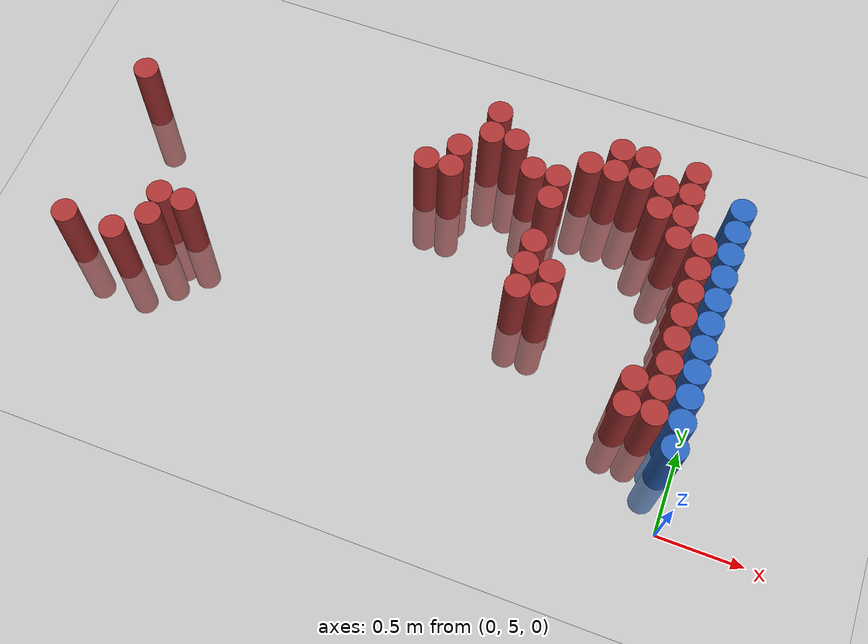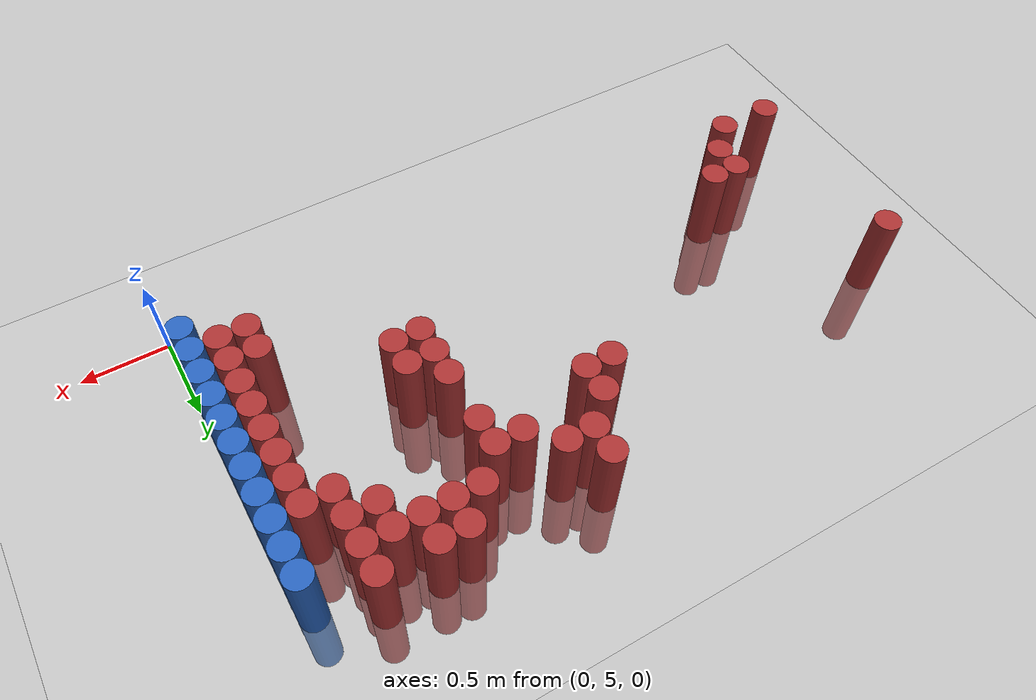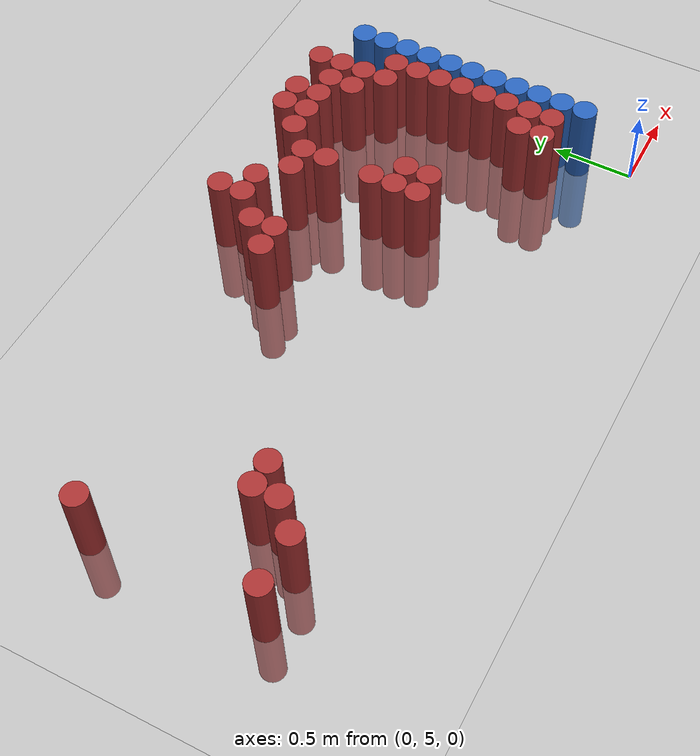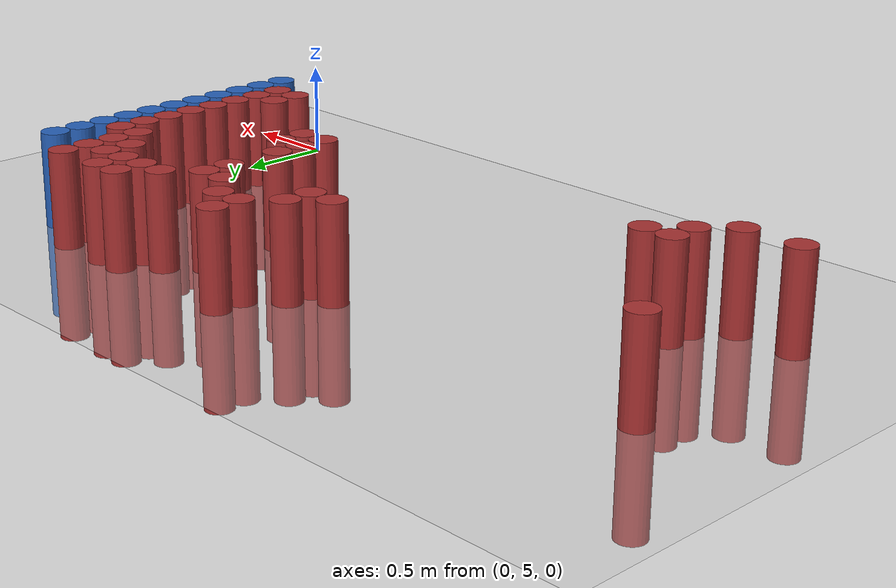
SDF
<sdf version="1.6">
 <world name="default">
  <model name="ground_plane">
   <static>1</static>
   <link name="link">
    <collision name="collision">
     <geometry><plane><normal>0 0 1</normal><size>100 100</size></plane></geometry>
     <surface><friction><ode><mu>100</mu><mu2>50</mu2></ode></friction></surface>
    </collision>
    <visual name="visual">
     <cast_shadows>0</cast_shadows>
     <geometry><plane><normal>0 0 1</normal><size>100 100</size></plane></geometry>
     <material>
      <script><uri>file://media/materials/scripts/gazebo.material</uri><name>Gazebo/Grey</name></script>
     </material>
    </visual>
   </link>
  </model>
  <model name="unit_cylinder_155">
   <static>1</static>
   <pose>-3.675000 5.475000 0.000000 0.000000 0.000000 0.000000</pose>
   <link name="link">
    <inertial>
     <mass>1</mass>
     <inertia><ixx>0.145833</ixx><ixy>0</ixy><ixz>0</ixz><iyy>0.145833</iyy><iyz>0</iyz><izz>0.125</izz></inertia>
    </inertial>
    <collision name="collision">
     <geometry><cylinder><radius>0.075000</radius><length>1</length></cylinder></geometry>
    </collision>
    <visual name="visual">
     <geometry><cylinder><radius>0.075000</radius><length>1</length></cylinder></geometry>
     <material>
      <ambient>0.648000 0.192000 0.192000 1</ambient>
      <diffuse>0.648000 0.192000 0.192000 1</diffuse>
     </material>
     <material>
      <script><name>Gazebo/Grey</name><uri>file://media/materials/scripts/gazebo.material</uri></script>
     </material>
    </visual>
   </link>
  </model>
  <model name="unit_cylinder_156">
   <static>1</static>
   <pose>-3.675000 6.525000 0.000000 0.000000 0.000000 0.000000</pose>
   <link name="link">
    <inertial>
     <mass>1</mass>
     <inertia><ixx>0.145833</ixx><ixy>0</ixy><ixz>0</ixz><iyy>0.145833</iyy><iyz>0</iyz><izz>0.125</izz></inertia>
    </inertial>
    <collision name="collision">
     <geometry><cylinder><radius>0.075000</radius><length>1</length></cylinder></geometry>
    </collision>
    <visual name="visual">
     <geometry><cylinder><radius>0.075000</radius><length>1</length></cylinder></geometry>
     <material>
      <ambient>0.648000 0.192000 0.192000 1</ambient>
      <diffuse>0.648000 0.192000 0.192000 1</diffuse>
     </material>
     <material>
      <script><name>Gazebo/Grey</name><uri>file://media/materials/scripts/gazebo.material</uri></script>
     </material>
    </visual>
   </link>
  </model>
  <model name="unit_cylinder_164">
   <static>1</static>
   <pose>-3.375000 5.475000 0.000000 0.000000 0.000000 0.000000</pose>
   <link name="link">
    <inertial>
     <mass>1</mass>
     <inertia><ixx>0.145833</ixx><ixy>0</ixy><ixz>0</ixz><iyy>0.145833</iyy><iyz>0</iyz><izz>0.125</izz></inertia>
    </inertial>
    <collision name="collision">
     <geometry><cylinder><radius>0.075000</radius><length>1</length></cylinder></geometry>
    </collision>
    <visual name="visual">
     <geometry><cylinder><radius>0.075000</radius><length>1</length></cylinder></geometry>
     <material>
      <ambient>0.648000 0.192000 0.192000 1</ambient>
      <diffuse>0.648000 0.192000 0.192000 1</diffuse>
     </material>
     <material>
      <script><name>Gazebo/Grey</name><uri>file://media/materials/scripts/gazebo.material</uri></script>
     </material>
    </visual>
   </link>
  </model>
  <model name="unit_cylinder_167">
   <static>1</static>
   <pose>-3.225000 5.625000 0.000000 0.000000 0.000000 0.000000</pose>
   <link name="link">
    <inertial>
     <mass>1</mass>
     <inertia><ixx>0.145833</ixx><ixy>0</ixy><ixz>0</ixz><iyy>0.145833</iyy><iyz>0</iyz><izz>0.125</izz></inertia>
    </inertial>
    <collision name="collision">
     <geometry><cylinder><radius>0.075000</radius><length>1</length></cylinder></geometry>
    </collision>
    <visual name="visual">
     <geometry><cylinder><radius>0.075000</radius><length>1</length></cylinder></geometry>
     <material>
      <ambient>0.648000 0.192000 0.192000 1</ambient>
      <diffuse>0.648000 0.192000 0.192000 1</diffuse>
     </material>
     <material>
      <script><name>Gazebo/Grey</name><uri>file://media/materials/scripts/gazebo.material</uri></script>
     </material>
    </visual>
   </link>
  </model>
  <model name="unit_cylinder_168">
   <static>1</static>
   <pose>-3.225000 5.775000 0.000000 0.000000 0.000000 0.000000</pose>
   <link name="link">
    <inertial>
     <mass>1</mass>
     <inertia><ixx>0.145833</ixx><ixy>0</ixy><ixz>0</ixz><iyy>0.145833</iyy><iyz>0</iyz><izz>0.125</izz></inertia>
    </inertial>
    <collision name="collision">
     <geometry><cylinder><radius>0.075000</radius><length>1</length></cylinder></geometry>
    </collision>
    <visual name="visual">
     <geometry><cylinder><radius>0.075000</radius><length>1</length></cylinder></geometry>
     <material>
      <ambient>0.648000 0.192000 0.192000 1</ambient>
      <diffuse>0.648000 0.192000 0.192000 1</diffuse>
     </material>
     <material>
      <script><name>Gazebo/Grey</name><uri>file://media/materials/scripts/gazebo.material</uri></script>
     </material>
    </visual>
   </link>
  </model>
  <model name="unit_cylinder_169">
   <static>1</static>
   <pose>-3.075000 5.775000 0.000000 0.000000 0.000000 0.000000</pose>
   <link name="link">
    <inertial>
     <mass>1</mass>
     <inertia><ixx>0.145833</ixx><ixy>0</ixy><ixz>0</ixz><iyy>0.145833</iyy><iyz>0</iyz><izz>0.125</izz></inertia>
    </inertial>
    <collision name="collision">
     <geometry><cylinder><radius>0.075000</radius><length>1</length></cylinder></geometry>
    </collision>
    <visual name="visual">
     <geometry><cylinder><radius>0.075000</radius><length>1</length></cylinder></geometry>
     <material>
      <ambient>0.648000 0.192000 0.192000 1</ambient>
      <diffuse>0.648000 0.192000 0.192000 1</diffuse>
     </material>
     <material>
      <script><name>Gazebo/Grey</name><uri>file://media/materials/scripts/gazebo.material</uri></script>
     </material>
    </visual>
   </link>
  </model>
  <model name="unit_cylinder_177">
   <static>1</static>
   <pose>-1.875000 6.525000 0.000000 0.000000 0.000000 0.000000</pose>
   <link name="link">
    <inertial>
     <mass>1</mass>
     <inertia><ixx>0.145833</ixx><ixy>0</ixy><ixz>0</ixz><iyy>0.145833</iyy><iyz>0</iyz><izz>0.125</izz></inertia>
    </inertial>
    <collision name="collision">
     <geometry><cylinder><radius>0.075000</radius><length>1</length></cylinder></geometry>
    </collision>
    <visual name="visual">
     <geometry><cylinder><radius>0.075000</radius><length>1</length></cylinder></geometry>
     <material>
      <ambient>0.648000 0.192000 0.192000 1</ambient>
      <diffuse>0.648000 0.192000 0.192000 1</diffuse>
     </material>
     <material>
      <script><name>Gazebo/Grey</name><uri>file://media/materials/scripts/gazebo.material</uri></script>
     </material>
    </visual>
   </link>
  </model>
  <model name="unit_cylinder_178">
   <static>1</static>
   <pose>-1.725000 6.525000 0.000000 0.000000 0.000000 0.000000</pose>
   <link name="link">
    <inertial>
     <mass>1</mass>
     <inertia><ixx>0.145833</ixx><ixy>0</ixy><ixz>0</ixz><iyy>0.145833</iyy><iyz>0</iyz><izz>0.125</izz></inertia>
    </inertial>
    <collision name="collision">
     <geometry><cylinder><radius>0.075000</radius><length>1</length></cylinder></geometry>
    </collision>
    <visual name="visual">
     <geometry><cylinder><radius>0.075000</radius><length>1</length></cylinder></geometry>
     <material>
      <ambient>0.648000 0.192000 0.192000 1</ambient>
      <diffuse>0.648000 0.192000 0.192000 1</diffuse>
     </material>
     <material>
      <script><name>Gazebo/Grey</name><uri>file://media/materials/scripts/gazebo.material</uri></script>
     </material>
    </visual>
   </link>
  </model>
  <model name="unit_cylinder_179">
   <static>1</static>
   <pose>-1.725000 6.675000 0.000000 0.000000 0.000000 0.000000</pose>
   <link name="link">
    <inertial>
     <mass>1</mass>
     <inertia><ixx>0.145833</ixx><ixy>0</ixy><ixz>0</ixz><iyy>0.145833</iyy><iyz>0</iyz><izz>0.125</izz></inertia>
    </inertial>
    <collision name="collision">
     <geometry><cylinder><radius>0.075000</radius><length>1</length></cylinder></geometry>
    </collision>
    <visual name="visual">
     <geometry><cylinder><radius>0.075000</radius><length>1</length></cylinder></geometry>
     <material>
      <ambient>0.648000 0.192000 0.192000 1</ambient>
      <diffuse>0.648000 0.192000 0.192000 1</diffuse>
     </material>
     <material>
      <script><name>Gazebo/Grey</name><uri>file://media/materials/scripts/gazebo.material</uri></script>
     </material>
    </visual>
   </link>
  </model>
  <model name="unit_cylinder_180">
   <static>1</static>
   <pose>-1.575000 6.825000 0.000000 0.000000 0.000000 0.000000</pose>
   <link name="link">
    <inertial>
     <mass>1</mass>
     <inertia><ixx>0.145833</ixx><ixy>0</ixy><ixz>0</ixz><iyy>0.145833</iyy><iyz>0</iyz><izz>0.125</izz></inertia>
    </inertial>
    <collision name="collision">
     <geometry><cylinder><radius>0.075000</radius><length>1</length></cylinder></geometry>
    </collision>
    <visual name="visual">
     <geometry><cylinder><radius>0.075000</radius><length>1</length></cylinder></geometry>
     <material>
      <ambient>0.648000 0.192000 0.192000 1</ambient>
      <diffuse>0.648000 0.192000 0.192000 1</diffuse>
     </material>
     <material>
      <script><name>Gazebo/Grey</name><uri>file://media/materials/scripts/gazebo.material</uri></script>
     </material>
    </visual>
   </link>
  </model>
  <model name="unit_cylinder_181">
   <static>1</static>
   <pose>-1.575000 6.975000 0.000000 0.000000 0.000000 0.000000</pose>
   <link name="link">
    <inertial>
     <mass>1</mass>
     <inertia><ixx>0.145833</ixx><ixy>0</ixy><ixz>0</ixz><iyy>0.145833</iyy><iyz>0</iyz><izz>0.125</izz></inertia>
    </inertial>
    <collision name="collision">
     <geometry><cylinder><radius>0.075000</radius><length>1</length></cylinder></geometry>
    </collision>
    <visual name="visual">
     <geometry><cylinder><radius>0.075000</radius><length>1</length></cylinder></geometry>
     <material>
      <ambient>0.648000 0.192000 0.192000 1</ambient>
      <diffuse>0.648000 0.192000 0.192000 1</diffuse>
     </material>
     <material>
      <script><name>Gazebo/Grey</name><uri>file://media/materials/scripts/gazebo.material</uri></script>
     </material>
    </visual>
   </link>
  </model>
  <model name="unit_cylinder_182">
   <static>1</static>
   <pose>-1.425000 6.825000 0.000000 0.000000 0.000000 0.000000</pose>
   <link name="link">
    <inertial>
     <mass>1</mass>
     <inertia><ixx>0.145833</ixx><ixy>0</ixy><ixz>0</ixz><iyy>0.145833</iyy><iyz>0</iyz><izz>0.125</izz></inertia>
    </inertial>
    <collision name="collision">
     <geometry><cylinder><radius>0.075000</radius><length>1</length></cylinder></geometry>
    </collision>
    <visual name="visual">
     <geometry><cylinder><radius>0.075000</radius><length>1</length></cylinder></geometry>
     <material>
      <ambient>0.648000 0.192000 0.192000 1</ambient>
      <diffuse>0.648000 0.192000 0.192000 1</diffuse>
     </material>
     <material>
      <script><name>Gazebo/Grey</name><uri>file://media/materials/scripts/gazebo.material</uri></script>
     </material>
    </visual>
   </link>
  </model>
  <model name="unit_cylinder_183">
   <static>1</static>
   <pose>-1.275000 6.675000 0.000000 0.000000 0.000000 0.000000</pose>
   <link name="link">
    <inertial>
     <mass>1</mass>
     <inertia><ixx>0.145833</ixx><ixy>0</ixy><ixz>0</ixz><iyy>0.145833</iyy><iyz>0</iyz><izz>0.125</izz></inertia>
    </inertial>
    <collision name="collision">
     <geometry><cylinder><radius>0.075000</radius><length>1</length></cylinder></geometry>
    </collision>
    <visual name="visual">
     <geometry><cylinder><radius>0.075000</radius><length>1</length></cylinder></geometry>
     <material>
      <ambient>0.648000 0.192000 0.192000 1</ambient>
      <diffuse>0.648000 0.192000 0.192000 1</diffuse>
     </material>
     <material>
      <script><name>Gazebo/Grey</name><uri>file://media/materials/scripts/gazebo.material</uri></script>
     </material>
    </visual>
   </link>
  </model>
  <model name="unit_cylinder_184">
   <static>1</static>
   <pose>-1.125000 5.925000 0.000000 0.000000 0.000000 0.000000</pose>
   <link name="link">
    <inertial>
     <mass>1</mass>
     <inertia><ixx>0.145833</ixx><ixy>0</ixy><ixz>0</ixz><iyy>0.145833</iyy><iyz>0</iyz><izz>0.125</izz></inertia>
    </inertial>
    <collision name="collision">
     <geometry><cylinder><radius>0.075000</radius><length>1</length></cylinder></geometry>
    </collision>
    <visual name="visual">
     <geometry><cylinder><radius>0.075000</radius><length>1</length></cylinder></geometry>
     <material>
      <ambient>0.648000 0.192000 0.192000 1</ambient>
      <diffuse>0.648000 0.192000 0.192000 1</diffuse>
     </material>
     <material>
      <script><name>Gazebo/Grey</name><uri>file://media/materials/scripts/gazebo.material</uri></script>
     </material>
    </visual>
   </link>
  </model>
  <model name="unit_cylinder_185">
   <static>1</static>
   <pose>-1.125000 6.075000 0.000000 0.000000 0.000000 0.000000</pose>
   <link name="link">
    <inertial>
     <mass>1</mass>
     <inertia><ixx>0.145833</ixx><ixy>0</ixy><ixz>0</ixz><iyy>0.145833</iyy><iyz>0</iyz><izz>0.125</izz></inertia>
    </inertial>
    <collision name="collision">
     <geometry><cylinder><radius>0.075000</radius><length>1</length></cylinder></geometry>
    </collision>
    <visual name="visual">
     <geometry><cylinder><radius>0.075000</radius><length>1</length></cylinder></geometry>
     <material>
      <ambient>0.648000 0.192000 0.192000 1</ambient>
      <diffuse>0.648000 0.192000 0.192000 1</diffuse>
     </material>
     <material>
      <script><name>Gazebo/Grey</name><uri>file://media/materials/scripts/gazebo.material</uri></script>
     </material>
    </visual>
   </link>
  </model>
  <model name="unit_cylinder_186">
   <static>1</static>
   <pose>-1.125000 6.225000 0.000000 0.000000 0.000000 0.000000</pose>
   <link name="link">
    <inertial>
     <mass>1</mass>
     <inertia><ixx>0.145833</ixx><ixy>0</ixy><ixz>0</ixz><iyy>0.145833</iyy><iyz>0</iyz><izz>0.125</izz></inertia>
    </inertial>
    <collision name="collision">
     <geometry><cylinder><radius>0.075000</radius><length>1</length></cylinder></geometry>
    </collision>
    <visual name="visual">
     <geometry><cylinder><radius>0.075000</radius><length>1</length></cylinder></geometry>
     <material>
      <ambient>0.648000 0.192000 0.192000 1</ambient>
      <diffuse>0.648000 0.192000 0.192000 1</diffuse>
     </material>
     <material>
      <script><name>Gazebo/Grey</name><uri>file://media/materials/scripts/gazebo.material</uri></script>
     </material>
    </visual>
   </link>
  </model>
  <model name="unit_cylinder_187">
   <static>1</static>
   <pose>-1.125000 6.525000 0.000000 0.000000 0.000000 0.000000</pose>
   <link name="link">
    <inertial>
     <mass>1</mass>
     <inertia><ixx>0.145833</ixx><ixy>0</ixy><ixz>0</ixz><iyy>0.145833</iyy><iyz>0</iyz><izz>0.125</izz></inertia>
    </inertial>
    <collision name="collision">
     <geometry><cylinder><radius>0.075000</radius><length>1</length></cylinder></geometry>
    </collision>
    <visual name="visual">
     <geometry><cylinder><radius>0.075000</radius><length>1</length></cylinder></geometry>
     <material>
      <ambient>0.648000 0.192000 0.192000 1</ambient>
      <diffuse>0.648000 0.192000 0.192000 1</diffuse>
     </material>
     <material>
      <script><name>Gazebo/Grey</name><uri>file://media/materials/scripts/gazebo.material</uri></script>
     </material>
    </visual>
   </link>
  </model>
  <model name="unit_cylinder_188">
   <static>1</static>
   <pose>-1.125000 6.675000 0.000000 0.000000 0.000000 0.000000</pose>
   <link name="link">
    <inertial>
     <mass>1</mass>
     <inertia><ixx>0.145833</ixx><ixy>0</ixy><ixz>0</ixz><iyy>0.145833</iyy><iyz>0</iyz><izz>0.125</izz></inertia>
    </inertial>
    <collision name="collision">
     <geometry><cylinder><radius>0.075000</radius><length>1</length></cylinder></geometry>
    </collision>
    <visual name="visual">
     <geometry><cylinder><radius>0.075000</radius><length>1</length></cylinder></geometry>
     <material>
      <ambient>0.648000 0.192000 0.192000 1</ambient>
      <diffuse>0.648000 0.192000 0.192000 1</diffuse>
     </material>
     <material>
      <script><name>Gazebo/Grey</name><uri>file://media/materials/scripts/gazebo.material</uri></script>
     </material>
    </visual>
   </link>
  </model>
  <model name="unit_cylinder_189">
   <static>1</static>
   <pose>-0.975000 5.925000 0.000000 0.000000 0.000000 0.000000</pose>
   <link name="link">
    <inertial>
     <mass>1</mass>
     <inertia><ixx>0.145833</ixx><ixy>0</ixy><ixz>0</ixz><iyy>0.145833</iyy><iyz>0</iyz><izz>0.125</izz></inertia>
    </inertial>
    <collision name="collision">
     <geometry><cylinder><radius>0.075000</radius><length>1</length></cylinder></geometry>
    </collision>
    <visual name="visual">
     <geometry><cylinder><radius>0.075000</radius><length>1</length></cylinder></geometry>
     <material>
      <ambient>0.648000 0.192000 0.192000 1</ambient>
      <diffuse>0.648000 0.192000 0.192000 1</diffuse>
     </material>
     <material>
      <script><name>Gazebo/Grey</name><uri>file://media/materials/scripts/gazebo.material</uri></script>
     </material>
    </visual>
   </link>
  </model>
  <model name="unit_cylinder_190">
   <static>1</static>
   <pose>-0.975000 6.075000 0.000000 0.000000 0.000000 0.000000</pose>
   <link name="link">
    <inertial>
     <mass>1</mass>
     <inertia><ixx>0.145833</ixx><ixy>0</ixy><ixz>0</ixz><iyy>0.145833</iyy><iyz>0</iyz><izz>0.125</izz></inertia>
    </inertial>
    <collision name="collision">
     <geometry><cylinder><radius>0.075000</radius><length>1</length></cylinder></geometry>
    </collision>
    <visual name="visual">
     <geometry><cylinder><radius>0.075000</radius><length>1</length></cylinder></geometry>
     <material>
      <ambient>0.648000 0.192000 0.192000 1</ambient>
      <diffuse>0.648000 0.192000 0.192000 1</diffuse>
     </material>
     <material>
      <script><name>Gazebo/Grey</name><uri>file://media/materials/scripts/gazebo.material</uri></script>
     </material>
    </visual>
   </link>
  </model>
  <model name="unit_cylinder_191">
   <static>1</static>
   <pose>-0.975000 6.825000 0.000000 0.000000 0.000000 0.000000</pose>
   <link name="link">
    <inertial>
     <mass>1</mass>
     <inertia><ixx>0.145833</ixx><ixy>0</ixy><ixz>0</ixz><iyy>0.145833</iyy><iyz>0</iyz><izz>0.125</izz></inertia>
    </inertial>
    <collision name="collision">
     <geometry><cylinder><radius>0.075000</radius><length>1</length></cylinder></geometry>
    </collision>
    <visual name="visual">
     <geometry><cylinder><radius>0.075000</radius><length>1</length></cylinder></geometry>
     <material>
      <ambient>0.648000 0.192000 0.192000 1</ambient>
      <diffuse>0.648000 0.192000 0.192000 1</diffuse>
     </material>
     <material>
      <script><name>Gazebo/Grey</name><uri>file://media/materials/scripts/gazebo.material</uri></script>
     </material>
    </visual>
   </link>
  </model>
  <model name="unit_cylinder_192">
   <static>1</static>
   <pose>-0.825000 6.825000 0.000000 0.000000 0.000000 0.000000</pose>
   <link name="link">
    <inertial>
     <mass>1</mass>
     <inertia><ixx>0.145833</ixx><ixy>0</ixy><ixz>0</ixz><iyy>0.145833</iyy><iyz>0</iyz><izz>0.125</izz></inertia>
    </inertial>
    <collision name="collision">
     <geometry><cylinder><radius>0.075000</radius><length>1</length></cylinder></geometry>
    </collision>
    <visual name="visual">
     <geometry><cylinder><radius>0.075000</radius><length>1</length></cylinder></geometry>
     <material>
      <ambient>0.648000 0.192000 0.192000 1</ambient>
      <diffuse>0.648000 0.192000 0.192000 1</diffuse>
     </material>
     <material>
      <script><name>Gazebo/Grey</name><uri>file://media/materials/scripts/gazebo.material</uri></script>
     </material>
    </visual>
   </link>
  </model>
  <model name="unit_cylinder_193">
   <static>1</static>
   <pose>-0.825000 6.975000 0.000000 0.000000 0.000000 0.000000</pose>
   <link name="link">
    <inertial>
     <mass>1</mass>
     <inertia><ixx>0.145833</ixx><ixy>0</ixy><ixz>0</ixz><iyy>0.145833</iyy><iyz>0</iyz><izz>0.125</izz></inertia>
    </inertial>
    <collision name="collision">
     <geometry><cylinder><radius>0.075000</radius><length>1</length></cylinder></geometry>
    </collision>
    <visual name="visual">
     <geometry><cylinder><radius>0.075000</radius><length>1</length></cylinder></geometry>
     <material>
      <ambient>0.648000 0.192000 0.192000 1</ambient>
      <diffuse>0.648000 0.192000 0.192000 1</diffuse>
     </material>
     <material>
      <script><name>Gazebo/Grey</name><uri>file://media/materials/scripts/gazebo.material</uri></script>
     </material>
    </visual>
   </link>
  </model>
  <model name="unit_cylinder_196">
   <static>1</static>
   <pose>-0.675000 6.825000 0.000000 0.000000 0.000000 0.000000</pose>
   <link name="link">
    <inertial>
     <mass>1</mass>
     <inertia><ixx>0.145833</ixx><ixy>0</ixy><ixz>0</ixz><iyy>0.145833</iyy><iyz>0</iyz><izz>0.125</izz></inertia>
    </inertial>
    <collision name="collision">
     <geometry><cylinder><radius>0.075000</radius><length>1</length></cylinder></geometry>
    </collision>
    <visual name="visual">
     <geometry><cylinder><radius>0.075000</radius><length>1</length></cylinder></geometry>
     <material>
      <ambient>0.648000 0.192000 0.192000 1</ambient>
      <diffuse>0.648000 0.192000 0.192000 1</diffuse>
     </material>
     <material>
      <script><name>Gazebo/Grey</name><uri>file://media/materials/scripts/gazebo.material</uri></script>
     </material>
    </visual>
   </link>
  </model>
  <model name="unit_cylinder_197">
   <static>1</static>
   <pose>-0.675000 6.975000 0.000000 0.000000 0.000000 0.000000</pose>
   <link name="link">
    <inertial>
     <mass>1</mass>
     <inertia><ixx>0.145833</ixx><ixy>0</ixy><ixz>0</ixz><iyy>0.145833</iyy><iyz>0</iyz><izz>0.125</izz></inertia>
    </inertial>
    <collision name="collision">
     <geometry><cylinder><radius>0.075000</radius><length>1</length></cylinder></geometry>
    </collision>
    <visual name="visual">
     <geometry><cylinder><radius>0.075000</radius><length>1</length></cylinder></geometry>
     <material>
      <ambient>0.648000 0.192000 0.192000 1</ambient>
      <diffuse>0.648000 0.192000 0.192000 1</diffuse>
     </material>
     <material>
      <script><name>Gazebo/Grey</name><uri>file://media/materials/scripts/gazebo.material</uri></script>
     </material>
    </visual>
   </link>
  </model>
  <model name="unit_cylinder_199">
   <static>1</static>
   <pose>-0.525000 6.675000 0.000000 0.000000 0.000000 0.000000</pose>
   <link name="link">
    <inertial>
     <mass>1</mass>
     <inertia><ixx>0.145833</ixx><ixy>0</ixy><ixz>0</ixz><iyy>0.145833</iyy><iyz>0</iyz><izz>0.125</izz></inertia>
    </inertial>
    <collision name="collision">
     <geometry><cylinder><radius>0.075000</radius><length>1</length></cylinder></geometry>
    </collision>
    <visual name="visual">
     <geometry><cylinder><radius>0.075000</radius><length>1</length></cylinder></geometry>
     <material>
      <ambient>0.648000 0.192000 0.192000 1</ambient>
      <diffuse>0.648000 0.192000 0.192000 1</diffuse>
     </material>
     <material>
      <script><name>Gazebo/Grey</name><uri>file://media/materials/scripts/gazebo.material</uri></script>
     </material>
    </visual>
   </link>
  </model>
  <model name="unit_cylinder_200">
   <static>1</static>
   <pose>-0.525000 6.825000 0.000000 0.000000 0.000000 0.000000</pose>
   <link name="link">
    <inertial>
     <mass>1</mass>
     <inertia><ixx>0.145833</ixx><ixy>0</ixy><ixz>0</ixz><iyy>0.145833</iyy><iyz>0</iyz><izz>0.125</izz></inertia>
    </inertial>
    <collision name="collision">
     <geometry><cylinder><radius>0.075000</radius><length>1</length></cylinder></geometry>
    </collision>
    <visual name="visual">
     <geometry><cylinder><radius>0.075000</radius><length>1</length></cylinder></geometry>
     <material>
      <ambient>0.648000 0.192000 0.192000 1</ambient>
      <diffuse>0.648000 0.192000 0.192000 1</diffuse>
     </material>
     <material>
      <script><name>Gazebo/Grey</name><uri>file://media/materials/scripts/gazebo.material</uri></script>
     </material>
    </visual>
   </link>
  </model>
  <model name="unit_cylinder_201">
   <static>1</static>
   <pose>-0.375000 5.475000 0.000000 0.000000 0.000000 0.000000</pose>
   <link name="link">
    <inertial>
     <mass>1</mass>
     <inertia><ixx>0.145833</ixx><ixy>0</ixy><ixz>0</ixz><iyy>0.145833</iyy><iyz>0</iyz><izz>0.125</izz></inertia>
    </inertial>
    <collision name="collision">
     <geometry><cylinder><radius>0.075000</radius><length>1</length></cylinder></geometry>
    </collision>
    <visual name="visual">
     <geometry><cylinder><radius>0.075000</radius><length>1</length></cylinder></geometry>
     <material>
      <ambient>0.648000 0.192000 0.192000 1</ambient>
      <diffuse>0.648000 0.192000 0.192000 1</diffuse>
     </material>
     <material>
      <script><name>Gazebo/Grey</name><uri>file://media/materials/scripts/gazebo.material</uri></script>
     </material>
    </visual>
   </link>
  </model>
  <model name="unit_cylinder_202">
   <static>1</static>
   <pose>-0.375000 5.625000 0.000000 0.000000 0.000000 0.000000</pose>
   <link name="link">
    <inertial>
     <mass>1</mass>
     <inertia><ixx>0.145833</ixx><ixy>0</ixy><ixz>0</ixz><iyy>0.145833</iyy><iyz>0</iyz><izz>0.125</izz></inertia>
    </inertial>
    <collision name="collision">
     <geometry><cylinder><radius>0.075000</radius><length>1</length></cylinder></geometry>
    </collision>
    <visual name="visual">
     <geometry><cylinder><radius>0.075000</radius><length>1</length></cylinder></geometry>
     <material>
      <ambient>0.648000 0.192000 0.192000 1</ambient>
      <diffuse>0.648000 0.192000 0.192000 1</diffuse>
     </material>
     <material>
      <script><name>Gazebo/Grey</name><uri>file://media/materials/scripts/gazebo.material</uri></script>
     </material>
    </visual>
   </link>
  </model>
  <model name="unit_cylinder_203">
   <static>1</static>
   <pose>-0.375000 6.525000 0.000000 0.000000 0.000000 0.000000</pose>
   <link name="link">
    <inertial>
     <mass>1</mass>
     <inertia><ixx>0.145833</ixx><ixy>0</ixy><ixz>0</ixz><iyy>0.145833</iyy><iyz>0</iyz><izz>0.125</izz></inertia>
    </inertial>
    <collision name="collision">
     <geometry><cylinder><radius>0.075000</radius><length>1</length></cylinder></geometry>
    </collision>
    <visual name="visual">
     <geometry><cylinder><radius>0.075000</radius><length>1</length></cylinder></geometry>
     <material>
      <ambient>0.648000 0.192000 0.192000 1</ambient>
      <diffuse>0.648000 0.192000 0.192000 1</diffuse>
     </material>
     <material>
      <script><name>Gazebo/Grey</name><uri>file://media/materials/scripts/gazebo.material</uri></script>
     </material>
    </visual>
   </link>
  </model>
  <model name="unit_cylinder_204">
   <static>1</static>
   <pose>-0.375000 6.675000 0.000000 0.000000 0.000000 0.000000</pose>
   <link name="link">
    <inertial>
     <mass>1</mass>
     <inertia><ixx>0.145833</ixx><ixy>0</ixy><ixz>0</ixz><iyy>0.145833</iyy><iyz>0</iyz><izz>0.125</izz></inertia>
    </inertial>
    <collision name="collision">
     <geometry><cylinder><radius>0.075000</radius><length>1</length></cylinder></geometry>
    </collision>
    <visual name="visual">
     <geometry><cylinder><radius>0.075000</radius><length>1</length></cylinder></geometry>
     <material>
      <ambient>0.648000 0.192000 0.192000 1</ambient>
      <diffuse>0.648000 0.192000 0.192000 1</diffuse>
     </material>
     <material>
      <script><name>Gazebo/Grey</name><uri>file://media/materials/scripts/gazebo.material</uri></script>
     </material>
    </visual>
   </link>
  </model>
  <model name="unit_cylinder_205">
   <static>1</static>
   <pose>-0.375000 6.825000 0.000000 0.000000 0.000000 0.000000</pose>
   <link name="link">
    <inertial>
     <mass>1</mass>
     <inertia><ixx>0.145833</ixx><ixy>0</ixy><ixz>0</ixz><iyy>0.145833</iyy><iyz>0</iyz><izz>0.125</izz></inertia>
    </inertial>
    <collision name="collision">
     <geometry><cylinder><radius>0.075000</radius><length>1</length></cylinder></geometry>
    </collision>
    <visual name="visual">
     <geometry><cylinder><radius>0.075000</radius><length>1</length></cylinder></geometry>
     <material>
      <ambient>0.648000 0.192000 0.192000 1</ambient>
      <diffuse>0.648000 0.192000 0.192000 1</diffuse>
     </material>
     <material>
      <script><name>Gazebo/Grey</name><uri>file://media/materials/scripts/gazebo.material</uri></script>
     </material>
    </visual>
   </link>
  </model>
  <model name="unit_cylinder_206">
   <static>1</static>
   <pose>-0.375000 6.975000 0.000000 0.000000 0.000000 0.000000</pose>
   <link name="link">
    <inertial>
     <mass>1</mass>
     <inertia><ixx>0.145833</ixx><ixy>0</ixy><ixz>0</ixz><iyy>0.145833</iyy><iyz>0</iyz><izz>0.125</izz></inertia>
    </inertial>
    <collision name="collision">
     <geometry><cylinder><radius>0.075000</radius><length>1</length></cylinder></geometry>
    </collision>
    <visual name="visual">
     <geometry><cylinder><radius>0.075000</radius><length>1</length></cylinder></geometry>
     <material>
      <ambient>0.648000 0.192000 0.192000 1</ambient>
      <diffuse>0.648000 0.192000 0.192000 1</diffuse>
     </material>
     <material>
      <script><name>Gazebo/Grey</name><uri>file://media/materials/scripts/gazebo.material</uri></script>
     </material>
    </visual>
   </link>
  </model>
  <model name="unit_cylinder_211">
   <static>1</static>
   <pose>-0.225000 5.475000 0.000000 0.000000 0.000000 0.000000</pose>
   <link name="link">
    <inertial>
     <mass>1</mass>
     <inertia><ixx>0.145833</ixx><ixy>0</ixy><ixz>0</ixz><iyy>0.145833</iyy><iyz>0</iyz><izz>0.125</izz></inertia>
    </inertial>
    <collision name="collision">
     <geometry><cylinder><radius>0.075000</radius><length>1</length></cylinder></geometry>
    </collision>
    <visual name="visual">
     <geometry><cylinder><radius>0.075000</radius><length>1</length></cylinder></geometry>
     <material>
      <ambient>0.648000 0.192000 0.192000 1</ambient>
      <diffuse>0.648000 0.192000 0.192000 1</diffuse>
     </material>
     <material>
      <script><name>Gazebo/Grey</name><uri>file://media/materials/scripts/gazebo.material</uri></script>
     </material>
    </visual>
   </link>
  </model>
  <model name="unit_cylinder_212">
   <static>1</static>
   <pose>-0.225000 5.625000 0.000000 0.000000 0.000000 0.000000</pose>
   <link name="link">
    <inertial>
     <mass>1</mass>
     <inertia><ixx>0.145833</ixx><ixy>0</ixy><ixz>0</ixz><iyy>0.145833</iyy><iyz>0</iyz><izz>0.125</izz></inertia>
    </inertial>
    <collision name="collision">
     <geometry><cylinder><radius>0.075000</radius><length>1</length></cylinder></geometry>
    </collision>
    <visual name="visual">
     <geometry><cylinder><radius>0.075000</radius><length>1</length></cylinder></geometry>
     <material>
      <ambient>0.648000 0.192000 0.192000 1</ambient>
      <diffuse>0.648000 0.192000 0.192000 1</diffuse>
     </material>
     <material>
      <script><name>Gazebo/Grey</name><uri>file://media/materials/scripts/gazebo.material</uri></script>
     </material>
    </visual>
   </link>
  </model>
  <model name="unit_cylinder_213">
   <static>1</static>
   <pose>-0.225000 5.775000 0.000000 0.000000 0.000000 0.000000</pose>
   <link name="link">
    <inertial>
     <mass>1</mass>
     <inertia><ixx>0.145833</ixx><ixy>0</ixy><ixz>0</ixz><iyy>0.145833</iyy><iyz>0</iyz><izz>0.125</izz></inertia>
    </inertial>
    <collision name="collision">
     <geometry><cylinder><radius>0.075000</radius><length>1</length></cylinder></geometry>
    </collision>
    <visual name="visual">
     <geometry><cylinder><radius>0.075000</radius><length>1</length></cylinder></geometry>
     <material>
      <ambient>0.648000 0.192000 0.192000 1</ambient>
      <diffuse>0.648000 0.192000 0.192000 1</diffuse>
     </material>
     <material>
      <script><name>Gazebo/Grey</name><uri>file://media/materials/scripts/gazebo.material</uri></script>
     </material>
    </visual>
   </link>
  </model>
  <model name="unit_cylinder_214">
   <static>1</static>
   <pose>-0.225000 5.925000 0.000000 0.000000 0.000000 0.000000</pose>
   <link name="link">
    <inertial>
     <mass>1</mass>
     <inertia><ixx>0.145833</ixx><ixy>0</ixy><ixz>0</ixz><iyy>0.145833</iyy><iyz>0</iyz><izz>0.125</izz></inertia>
    </inertial>
    <collision name="collision">
     <geometry><cylinder><radius>0.075000</radius><length>1</length></cylinder></geometry>
    </collision>
    <visual name="visual">
     <geometry><cylinder><radius>0.075000</radius><length>1</length></cylinder></geometry>
     <material>
      <ambient>0.648000 0.192000 0.192000 1</ambient>
      <diffuse>0.648000 0.192000 0.192000 1</diffuse>
     </material>
     <material>
      <script><name>Gazebo/Grey</name><uri>file://media/materials/scripts/gazebo.material</uri></script>
     </material>
    </visual>
   </link>
  </model>
  <model name="unit_cylinder_215">
   <static>1</static>
   <pose>-0.225000 6.075000 0.000000 0.000000 0.000000 0.000000</pose>
   <link name="link">
    <inertial>
     <mass>1</mass>
     <inertia><ixx>0.145833</ixx><ixy>0</ixy><ixz>0</ixz><iyy>0.145833</iyy><iyz>0</iyz><izz>0.125</izz></inertia>
    </inertial>
    <collision name="collision">
     <geometry><cylinder><radius>0.075000</radius><length>1</length></cylinder></geometry>
    </collision>
    <visual name="visual">
     <geometry><cylinder><radius>0.075000</radius><length>1</length></cylinder></geometry>
     <material>
      <ambient>0.648000 0.192000 0.192000 1</ambient>
      <diffuse>0.648000 0.192000 0.192000 1</diffuse>
     </material>
     <material>
      <script><name>Gazebo/Grey</name><uri>file://media/materials/scripts/gazebo.material</uri></script>
     </material>
    </visual>
   </link>
  </model>
  <model name="unit_cylinder_216">
   <static>1</static>
   <pose>-0.225000 6.225000 0.000000 0.000000 0.000000 0.000000</pose>
   <link name="link">
    <inertial>
     <mass>1</mass>
     <inertia><ixx>0.145833</ixx><ixy>0</ixy><ixz>0</ixz><iyy>0.145833</iyy><iyz>0</iyz><izz>0.125</izz></inertia>
    </inertial>
    <collision name="collision">
     <geometry><cylinder><radius>0.075000</radius><length>1</length></cylinder></geometry>
    </collision>
    <visual name="visual">
     <geometry><cylinder><radius>0.075000</radius><length>1</length></cylinder></geometry>
     <material>
      <ambient>0.648000 0.192000 0.192000 1</ambient>
      <diffuse>0.648000 0.192000 0.192000 1</diffuse>
     </material>
     <material>
      <script><name>Gazebo/Grey</name><uri>file://media/materials/scripts/gazebo.material</uri></script>
     </material>
    </visual>
   </link>
  </model>
  <model name="unit_cylinder_217">
   <static>1</static>
   <pose>-0.225000 6.375000 0.000000 0.000000 0.000000 0.000000</pose>
   <link name="link">
    <inertial>
     <mass>1</mass>
     <inertia><ixx>0.145833</ixx><ixy>0</ixy><ixz>0</ixz><iyy>0.145833</iyy><iyz>0</iyz><izz>0.125</izz></inertia>
    </inertial>
    <collision name="collision">
     <geometry><cylinder><radius>0.075000</radius><length>1</length></cylinder></geometry>
    </collision>
    <visual name="visual">
     <geometry><cylinder><radius>0.075000</radius><length>1</length></cylinder></geometry>
     <material>
      <ambient>0.648000 0.192000 0.192000 1</ambient>
      <diffuse>0.648000 0.192000 0.192000 1</diffuse>
     </material>
     <material>
      <script><name>Gazebo/Grey</name><uri>file://media/materials/scripts/gazebo.material</uri></script>
     </material>
    </visual>
   </link>
  </model>
  <model name="unit_cylinder_218">
   <static>1</static>
   <pose>-0.225000 6.525000 0.000000 0.000000 0.000000 0.000000</pose>
   <link name="link">
    <inertial>
     <mass>1</mass>
     <inertia><ixx>0.145833</ixx><ixy>0</ixy><ixz>0</ixz><iyy>0.145833</iyy><iyz>0</iyz><izz>0.125</izz></inertia>
    </inertial>
    <collision name="collision">
     <geometry><cylinder><radius>0.075000</radius><length>1</length></cylinder></geometry>
    </collision>
    <visual name="visual">
     <geometry><cylinder><radius>0.075000</radius><length>1</length></cylinder></geometry>
     <material>
      <ambient>0.648000 0.192000 0.192000 1</ambient>
      <diffuse>0.648000 0.192000 0.192000 1</diffuse>
     </material>
     <material>
      <script><name>Gazebo/Grey</name><uri>file://media/materials/scripts/gazebo.material</uri></script>
     </material>
    </visual>
   </link>
  </model>
  <model name="unit_cylinder_232">
   <static>1</static>
   <pose>-0.075000 5.325000 0.000000 0.000000 0.000000 0.000000</pose>
   <link name="link">
    <inertial>
     <mass>1</mass>
     <inertia><ixx>0.145833</ixx><ixy>0</ixy><ixz>0</ixz><iyy>0.145833</iyy><iyz>0</iyz><izz>0.125</izz></inertia>
    </inertial>
    <collision name="collision">
     <geometry><cylinder><radius>0.075000</radius><length>1</length></cylinder></geometry>
    </collision>
    <visual name="visual">
     <geometry><cylinder><radius>0.075000</radius><length>1</length></cylinder></geometry>
     <material>
      <ambient>0.152000 0.379000 0.720000 1</ambient>
      <diffuse>0.152000 0.379000 0.720000 1</diffuse>
     </material>
     <material>
      <script><name>Gazebo/Grey</name><uri>file://media/materials/scripts/gazebo.material</uri></script>
     </material>
    </visual>
   </link>
  </model>
  <model name="unit_cylinder_233">
   <static>1</static>
   <pose>-0.075000 5.475000 0.000000 0.000000 0.000000 0.000000</pose>
   <link name="link">
    <inertial>
     <mass>1</mass>
     <inertia><ixx>0.145833</ixx><ixy>0</ixy><ixz>0</ixz><iyy>0.145833</iyy><iyz>0</iyz><izz>0.125</izz></inertia>
    </inertial>
    <collision name="collision">
     <geometry><cylinder><radius>0.075000</radius><length>1</length></cylinder></geometry>
    </collision>
    <visual name="visual">
     <geometry><cylinder><radius>0.075000</radius><length>1</length></cylinder></geometry>
     <material>
      <ambient>0.152000 0.379000 0.720000 1</ambient>
      <diffuse>0.152000 0.379000 0.720000 1</diffuse>
     </material>
     <material>
      <script><name>Gazebo/Grey</name><uri>file://media/materials/scripts/gazebo.material</uri></script>
     </material>
    </visual>
   </link>
  </model>
  <model name="unit_cylinder_234">
   <static>1</static>
   <pose>-0.075000 5.625000 0.000000 0.000000 0.000000 0.000000</pose>
   <link name="link">
    <inertial>
     <mass>1</mass>
     <inertia><ixx>0.145833</ixx><ixy>0</ixy><ixz>0</ixz><iyy>0.145833</iyy><iyz>0</iyz><izz>0.125</izz></inertia>
    </inertial>
    <collision name="collision">
     <geometry><cylinder><radius>0.075000</radius><length>1</length></cylinder></geometry>
    </collision>
    <visual name="visual">
     <geometry><cylinder><radius>0.075000</radius><length>1</length></cylinder></geometry>
     <material>
      <ambient>0.152000 0.379000 0.720000 1</ambient>
      <diffuse>0.152000 0.379000 0.720000 1</diffuse>
     </material>
     <material>
      <script><name>Gazebo/Grey</name><uri>file://media/materials/scripts/gazebo.material</uri></script>
     </material>
    </visual>
   </link>
  </model>
  <model name="unit_cylinder_235">
   <static>1</static>
   <pose>-0.075000 5.775000 0.000000 0.000000 0.000000 0.000000</pose>
   <link name="link">
    <inertial>
     <mass>1</mass>
     <inertia><ixx>0.145833</ixx><ixy>0</ixy><ixz>0</ixz><iyy>0.145833</iyy><iyz>0</iyz><izz>0.125</izz></inertia>
    </inertial>
    <collision name="collision">
     <geometry><cylinder><radius>0.075000</radius><length>1</length></cylinder></geometry>
    </collision>
    <visual name="visual">
     <geometry><cylinder><radius>0.075000</radius><length>1</length></cylinder></geometry>
     <material>
      <ambient>0.152000 0.379000 0.720000 1</ambient>
      <diffuse>0.152000 0.379000 0.720000 1</diffuse>
     </material>
     <material>
      <script><name>Gazebo/Grey</name><uri>file://media/materials/scripts/gazebo.material</uri></script>
     </material>
    </visual>
   </link>
  </model>
  <model name="unit_cylinder_236">
   <static>1</static>
   <pose>-0.075000 5.925000 0.000000 0.000000 0.000000 0.000000</pose>
   <link name="link">
    <inertial>
     <mass>1</mass>
     <inertia><ixx>0.145833</ixx><ixy>0</ixy><ixz>0</ixz><iyy>0.145833</iyy><iyz>0</iyz><izz>0.125</izz></inertia>
    </inertial>
    <collision name="collision">
     <geometry><cylinder><radius>0.075000</radius><length>1</length></cylinder></geometry>
    </collision>
    <visual name="visual">
     <geometry><cylinder><radius>0.075000</radius><length>1</length></cylinder></geometry>
     <material>
      <ambient>0.152000 0.379000 0.720000 1</ambient>
      <diffuse>0.152000 0.379000 0.720000 1</diffuse>
     </material>
     <material>
      <script><name>Gazebo/Grey</name><uri>file://media/materials/scripts/gazebo.material</uri></script>
     </material>
    </visual>
   </link>
  </model>
  <model name="unit_cylinder_237">
   <static>1</static>
   <pose>-0.075000 6.075000 0.000000 0.000000 0.000000 0.000000</pose>
   <link name="link">
    <inertial>
     <mass>1</mass>
     <inertia><ixx>0.145833</ixx><ixy>0</ixy><ixz>0</ixz><iyy>0.145833</iyy><iyz>0</iyz><izz>0.125</izz></inertia>
    </inertial>
    <collision name="collision">
     <geometry><cylinder><radius>0.075000</radius><length>1</length></cylinder></geometry>
    </collision>
    <visual name="visual">
     <geometry><cylinder><radius>0.075000</radius><length>1</length></cylinder></geometry>
     <material>
      <ambient>0.152000 0.379000 0.720000 1</ambient>
      <diffuse>0.152000 0.379000 0.720000 1</diffuse>
     </material>
     <material>
      <script><name>Gazebo/Grey</name><uri>file://media/materials/scripts/gazebo.material</uri></script>
     </material>
    </visual>
   </link>
  </model>
  <model name="unit_cylinder_238">
   <static>1</static>
   <pose>-0.075000 6.225000 0.000000 0.000000 0.000000 0.000000</pose>
   <link name="link">
    <inertial>
     <mass>1</mass>
     <inertia><ixx>0.145833</ixx><ixy>0</ixy><ixz>0</ixz><iyy>0.145833</iyy><iyz>0</iyz><izz>0.125</izz></inertia>
    </inertial>
    <collision name="collision">
     <geometry><cylinder><radius>0.075000</radius><length>1</length></cylinder></geometry>
    </collision>
    <visual name="visual">
     <geometry><cylinder><radius>0.075000</radius><length>1</length></cylinder></geometry>
     <material>
      <ambient>0.152000 0.379000 0.720000 1</ambient>
      <diffuse>0.152000 0.379000 0.720000 1</diffuse>
     </material>
     <material>
      <script><name>Gazebo/Grey</name><uri>file://media/materials/scripts/gazebo.material</uri></script>
     </material>
    </visual>
   </link>
  </model>
  <model name="unit_cylinder_239">
   <static>1</static>
   <pose>-0.075000 6.375000 0.000000 0.000000 0.000000 0.000000</pose>
   <link name="link">
    <inertial>
     <mass>1</mass>
     <inertia><ixx>0.145833</ixx><ixy>0</ixy><ixz>0</ixz><iyy>0.145833</iyy><iyz>0</iyz><izz>0.125</izz></inertia>
    </inertial>
    <collision name="collision">
     <geometry><cylinder><radius>0.075000</radius><length>1</length></cylinder></geometry>
    </collision>
    <visual name="visual">
     <geometry><cylinder><radius>0.075000</radius><length>1</length></cylinder></geometry>
     <material>
      <ambient>0.152000 0.379000 0.720000 1</ambient>
      <diffuse>0.152000 0.379000 0.720000 1</diffuse>
     </material>
     <material>
      <script><name>Gazebo/Grey</name><uri>file://media/materials/scripts/gazebo.material</uri></script>
     </material>
    </visual>
   </link>
  </model>
  <model name="unit_cylinder_240">
   <static>1</static>
   <pose>-0.075000 6.525000 0.000000 0.000000 0.000000 0.000000</pose>
   <link name="link">
    <inertial>
     <mass>1</mass>
     <inertia><ixx>0.145833</ixx><ixy>0</ixy><ixz>0</ixz><iyy>0.145833</iyy><iyz>0</iyz><izz>0.125</izz></inertia>
    </inertial>
    <collision name="collision">
     <geometry><cylinder><radius>0.075000</radius><length>1</length></cylinder></geometry>
    </collision>
    <visual name="visual">
     <geometry><cylinder><radius>0.075000</radius><length>1</length></cylinder></geometry>
     <material>
      <ambient>0.152000 0.379000 0.720000 1</ambient>
      <diffuse>0.152000 0.379000 0.720000 1</diffuse>
     </material>
     <material>
      <script><name>Gazebo/Grey</name><uri>file://media/materials/scripts/gazebo.material</uri></script>
     </material>
    </visual>
   </link>
  </model>
  <model name="unit_cylinder_241">
   <static>1</static>
   <pose>-0.075000 6.675000 0.000000 0.000000 0.000000 0.000000</pose>
   <link name="link">
    <inertial>
     <mass>1</mass>
     <inertia><ixx>0.145833</ixx><ixy>0</ixy><ixz>0</ixz><iyy>0.145833</iyy><iyz>0</iyz><izz>0.125</izz></inertia>
    </inertial>
    <collision name="collision">
     <geometry><cylinder><radius>0.075000</radius><length>1</length></cylinder></geometry>
    </collision>
    <visual name="visual">
     <geometry><cylinder><radius>0.075000</radius><length>1</length></cylinder></geometry>
     <material>
      <ambient>0.152000 0.379000 0.720000 1</ambient>
      <diffuse>0.152000 0.379000 0.720000 1</diffuse>
     </material>
     <material>
      <script><name>Gazebo/Grey</name><uri>file://media/materials/scripts/gazebo.material</uri></script>
     </material>
    </visual>
   </link>
  </model>
  <model name="unit_cylinder_242">
   <static>1</static>
   <pose>-0.075000 6.825000 0.000000 0.000000 0.000000 0.000000</pose>
   <link name="link">
    <inertial>
     <mass>1</mass>
     <inertia><ixx>0.145833</ixx><ixy>0</ixy><ixz>0</ixz><iyy>0.145833</iyy><iyz>0</iyz><izz>0.125</izz></inertia>
    </inertial>
    <collision name="collision">
     <geometry><cylinder><radius>0.075000</radius><length>1</length></cylinder></geometry>
    </collision>
    <visual name="visual">
     <geometry><cylinder><radius>0.075000</radius><length>1</length></cylinder></geometry>
     <material>
      <ambient>0.152000 0.379000 0.720000 1</ambient>
      <diffuse>0.152000 0.379000 0.720000 1</diffuse>
     </material>
     <material>
      <script><name>Gazebo/Grey</name><uri>file://media/materials/scripts/gazebo.material</uri></script>
     </material>
    </visual>
   </link>
  </model>
 </world>
</sdf>
